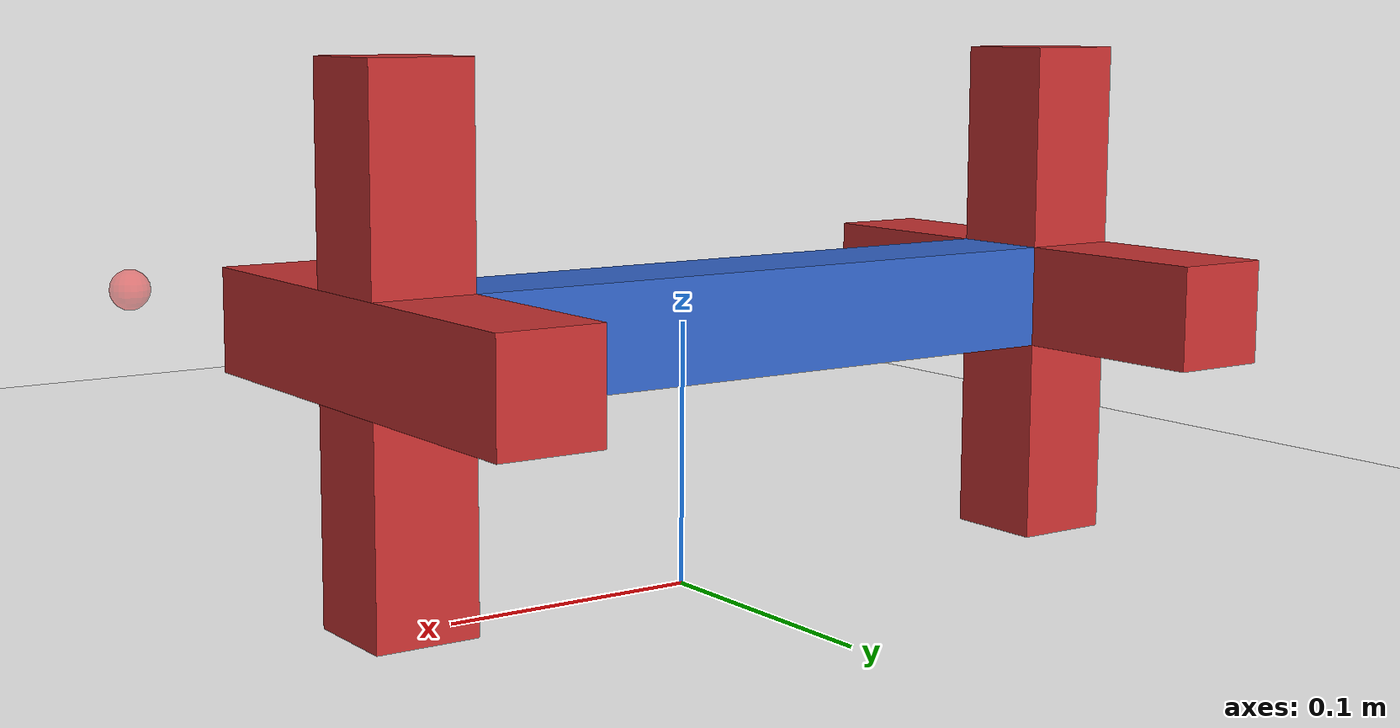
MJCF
<mujoco model="t_block_dual">

  <visual>
  <quality shadowsize="0"/>
  </visual>

  <asset>
    <!-- Checker texture (dark gray / light gray) -->
    <texture name="tex_floor_checker" type="2d" builtin="checker"
             width="512" height="512"
             rgb1="0.90 0.90 0.90" rgb2="0.72 0.72 0.72"/>

    <!-- Material using that texture -->
    <material name="mat_floor_checker"
              texture="tex_floor_checker"
              texrepeat="20 20" texuniform="true"
              reflectance="0.0" shininess="0.2" specular="0.1"
              rgba="1 1 1 1"/>
  </asset>

  <compiler angle="radian"/>
  <option timestep="0.01"/>
  <default>
    <geom friction="0.5 0.005 0.0001" density="1000"/>
  </default>
  <worldbody>
    <light name="scene_light" pos="0 0 1.5" dir="0 0 -1" directional="true"/>
    <geom name="floor" type="plane" size="50 50 0.1" pos="0 0 0" material="mat_floor_checker" rgba="1 1 1 1"/>

    <body name="T_siconos" pos="0 0 0.1" quat="0.5 0.5 0.5 0.5">
      <freejoint name="root_siconos"/>
      <geom name="T_stem_s" type="box" size="0.02 0.02 0.15" pos="0 0 -0.05"
            rgba="0.2 0.4 0.8 1" conaffinity="0" contype="0"/>
      <geom name="T_top_s" type="box" size="0.1 0.02 0.02" pos="0 0 0.12"
            rgba="0.8 0.2 0.2 1" conaffinity="0" contype="0"/>
      <geom name="T_top_ss" type="box" size="0.02 0.1 0.02" pos="0 0 0.12"
            rgba="0.8 0.2 0.2 1" conaffinity="0" contype="0"/>
      <geom name="T_top_l" type="box" size="0.1 0.02 0.02" pos="0 0 -0.18"
            rgba="0.8 0.2 0.2 1" conaffinity="0" contype="0"/>
      <geom name="T_top_ll" type="box" size="0.02 0.1 0.02" pos="0 0 -0.18"
            rgba="0.8 0.2 0.2 1" conaffinity="0" contype="0"/>

    </body>

    <body name="T_mujoco" pos="0 0 0.3">
      <freejoint name="root_mujoco"/>
      <geom name="T_stem_m" type="box" size="0.02 0.02 0.15" pos="0 0 -0.05"
            rgba="0.2 0.4 0.8 0.0"/>
      <geom name="T_top_m" type="box" size="0.1 0.02 0.02" pos="0 0 0.12"
            rgba="0.8 0.2 0.2 0.0"/>
      <geom name="T_top_mm" type="box" size="0.02 0.1 0.02" pos="0 0 -0.12"
            rgba="0.8 0.2 0.2 0.0"/>
    </body>
     <body name="target_mocap" mocap="true" pos="0.08 -0.35 0.08">

      <geom type="sphere" size="0.01" rgba="1 0 0 0.4" contype="0" conaffinity="0"/>
    </body>
  </worldbody>
</mujoco>
